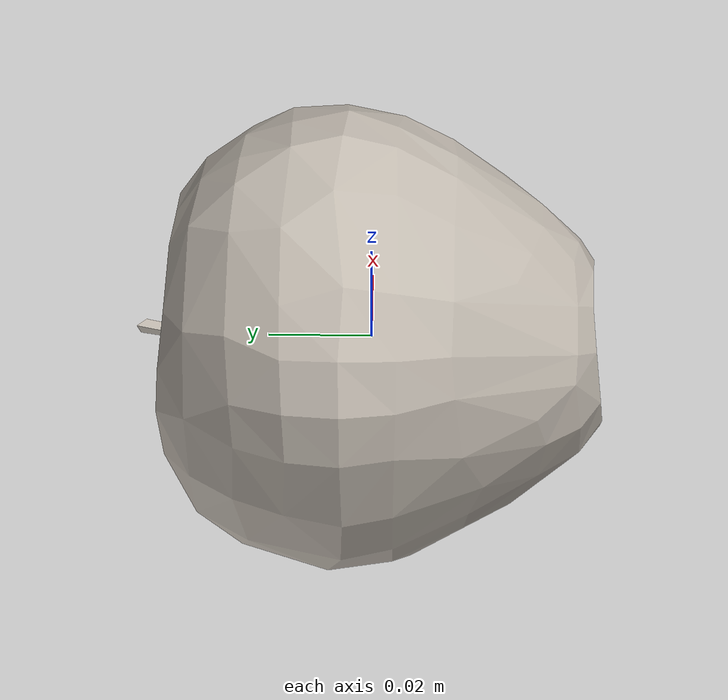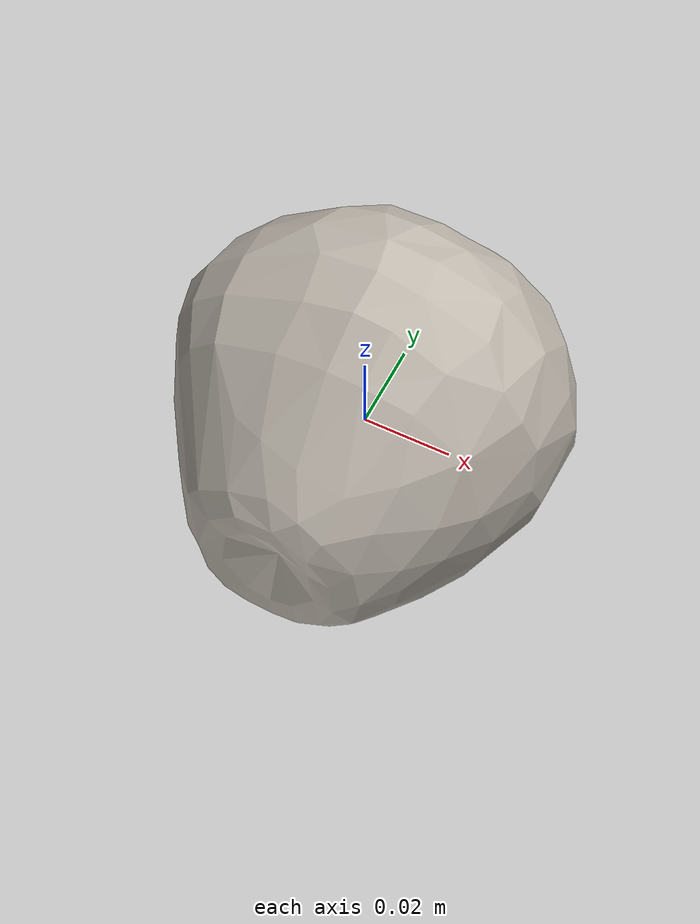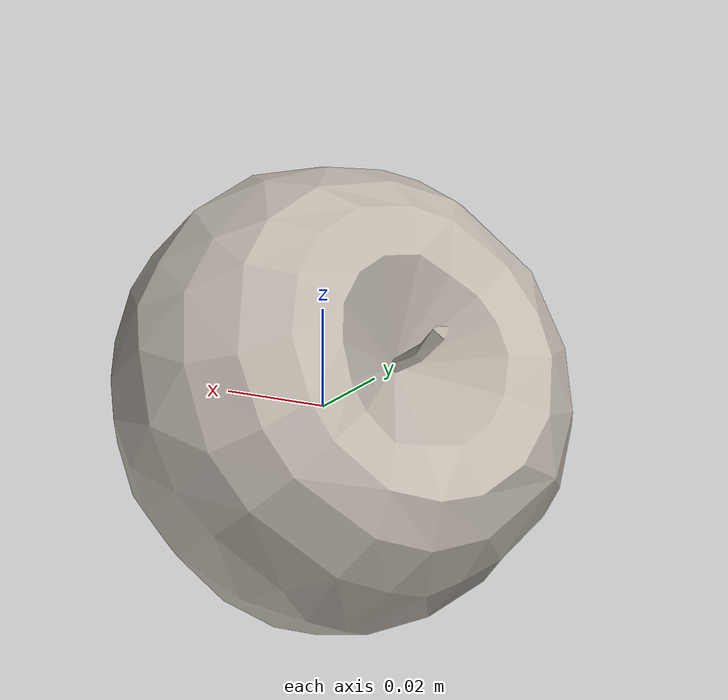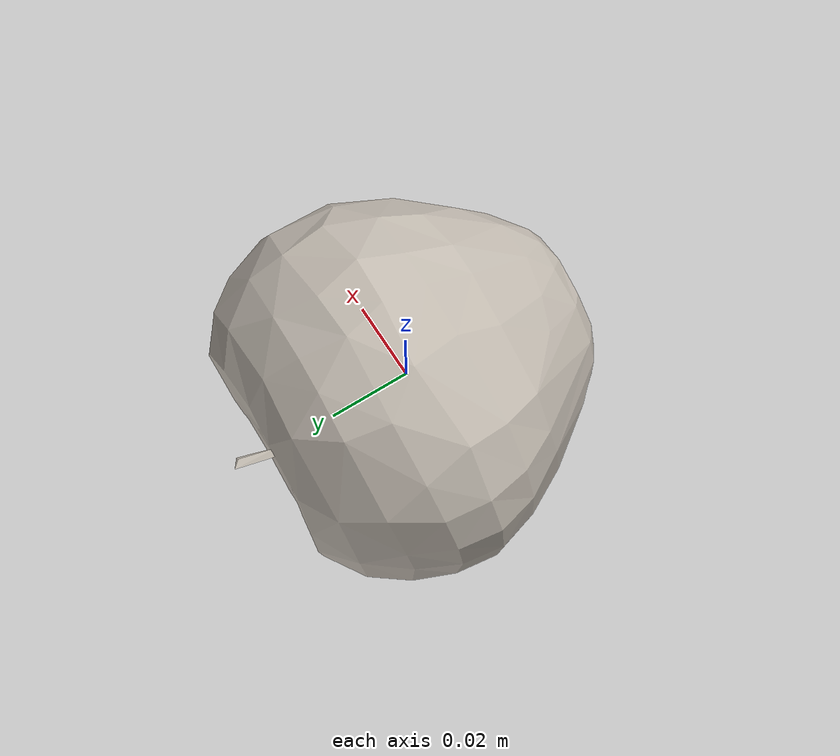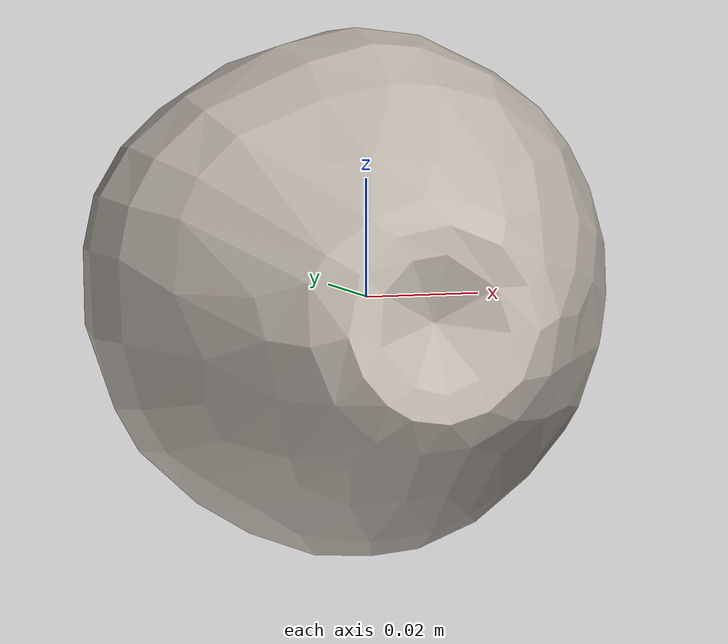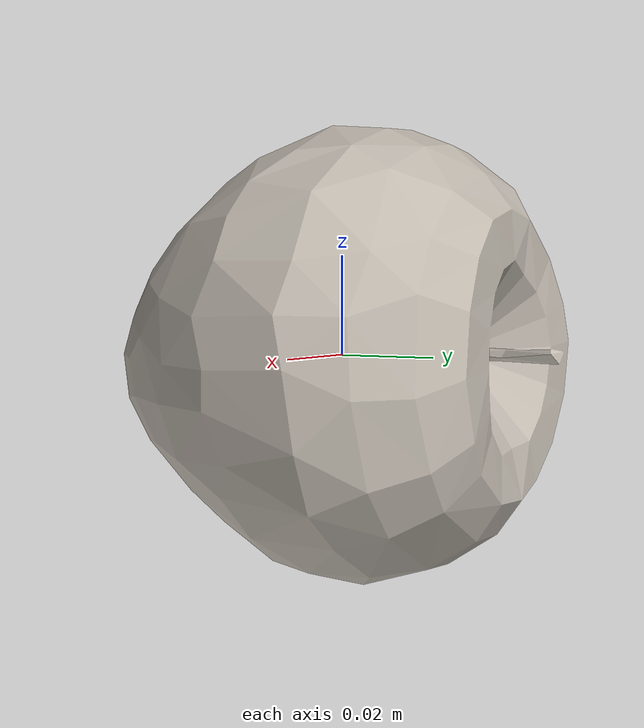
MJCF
<mujoco model="Apple_27">
  <compiler autolimits="true" boundmass="0.01" angle="radian"/>
  <default>
    <default class="/">
      <default class="__VISUAL_MJT__">
        <geom contype="0" conaffinity="0" group="0"/>
      </default>
      <default class="__STRUCTURAL_MJT__">
        <geom contype="8" conaffinity="15" group="4" friction="0.90000000000000002 0.90000000000000002 0.001" solref="0.025000000000000001 1" solimp="0.998 0.998 0.001"/>
      </default>
      <default class="__DYNAMIC_MJT__">
        <geom contype="1" conaffinity="15" group="4" friction="0.90000000000000002 0.90000000000000002 0.001" solref="0.025000000000000001 1" solimp="0.998 0.998 0.001"/>
      </default>
    </default>
  </default>
  <asset>
    <texture name="Apple2_Mat3" type="2d" file="Apple2_AlbedoTransparency3.png"/>
    <material name="material_Apple2_Mat3" class="/" texture="Apple2_Mat3" specular="0.5" shininess="0.5" rgba="1 1 1 1"/>
    <mesh name="Apple_27_apple_b12" class="/" file="Apple_27_apple_b12/Apple_27_apple_b12.obj" scale="1 1 1"/>
  </asset>
  <worldbody>
    <body name="Apple_27">
      <joint name="Apple_27_free" class="/" type="free" pos="0 0 0" axis="0 0 1" stiffness="0" range="0 0" armature="0" damping="0.10000000000000001" frictionloss="0"/>
      <body name="Apple_27_apple_b12" pos="-0.00052999999999999998 0.0062700000000000004 -0.00044999999999999999" quat="1 0 0 0">
        <geom name="Apple_27_apple_b12" class="__VISUAL_MJT__" type="mesh" material="material_Apple2_Mat3" shellinertia="false" mesh="Apple_27_apple_b12"/>
        <geom name="Apple_27_PrimitiveCollider_0" class="__DYNAMIC_MJT__" type="capsule" size="0.045343846082687378 0.0017309114336967468" rgba="0 1 0 1" pos="-0.00053411722183227539 -0.0062720403075218201 0.00045064091682434082" quat="0.70710678118654757 0.70710678118654746 0 0"/>
      </body>
    </body>
  </worldbody>
</mujoco>
